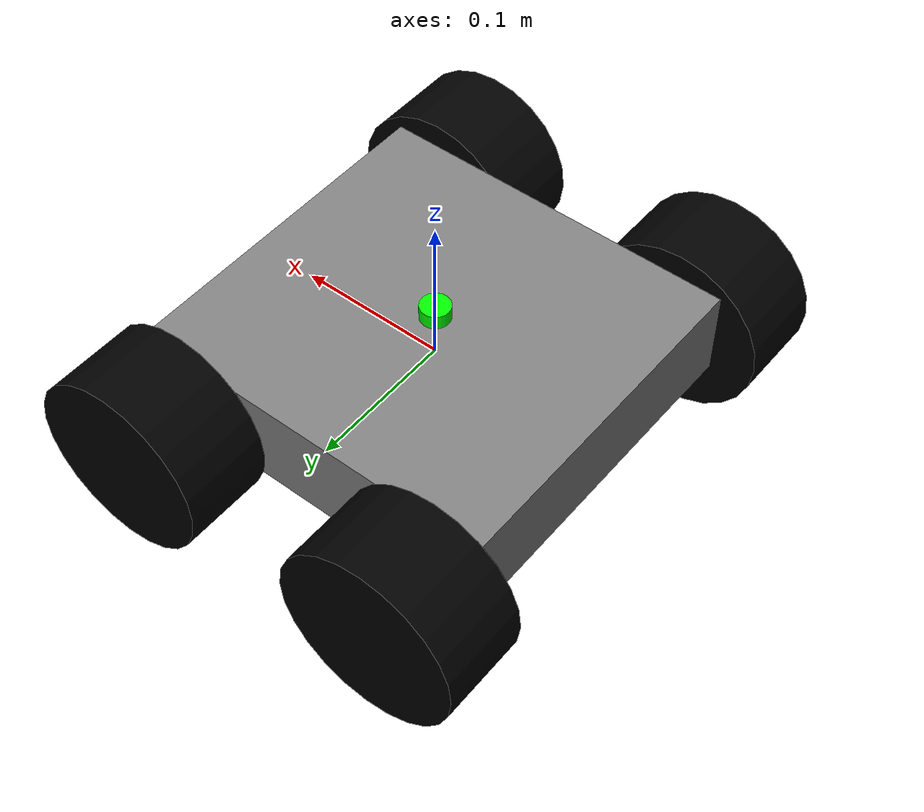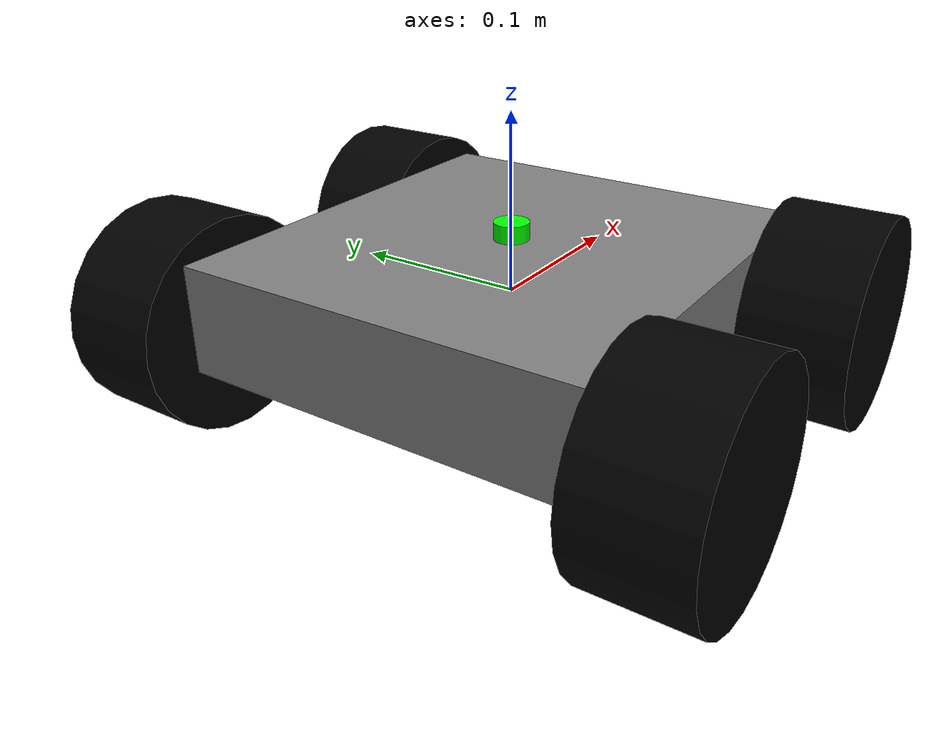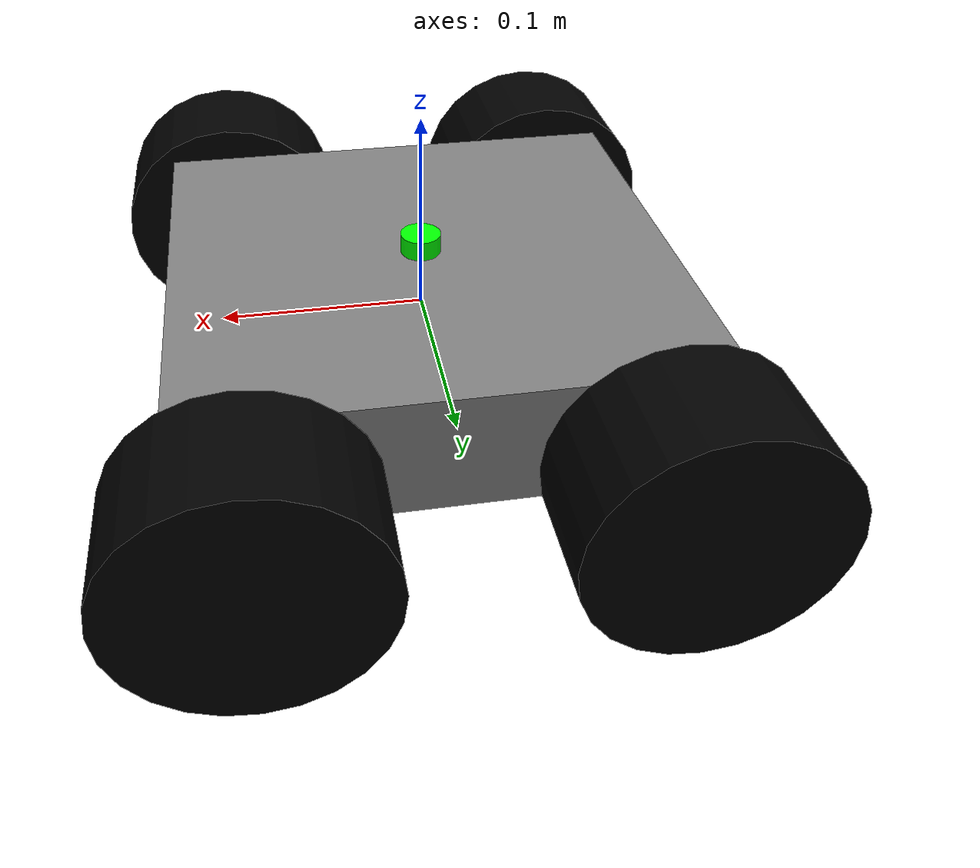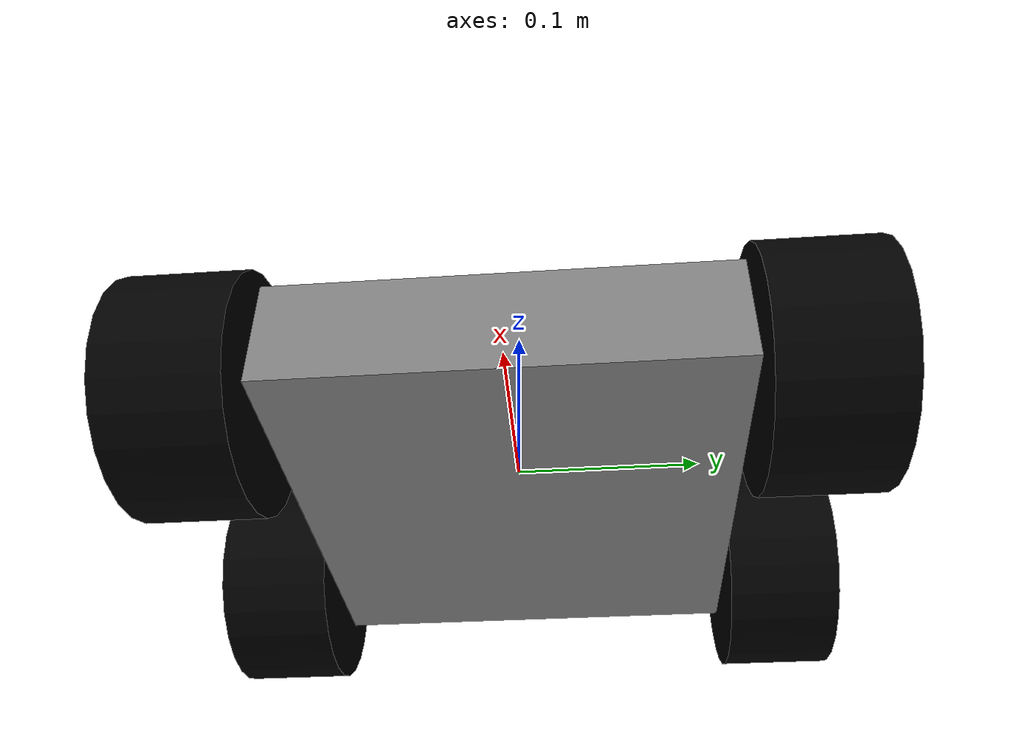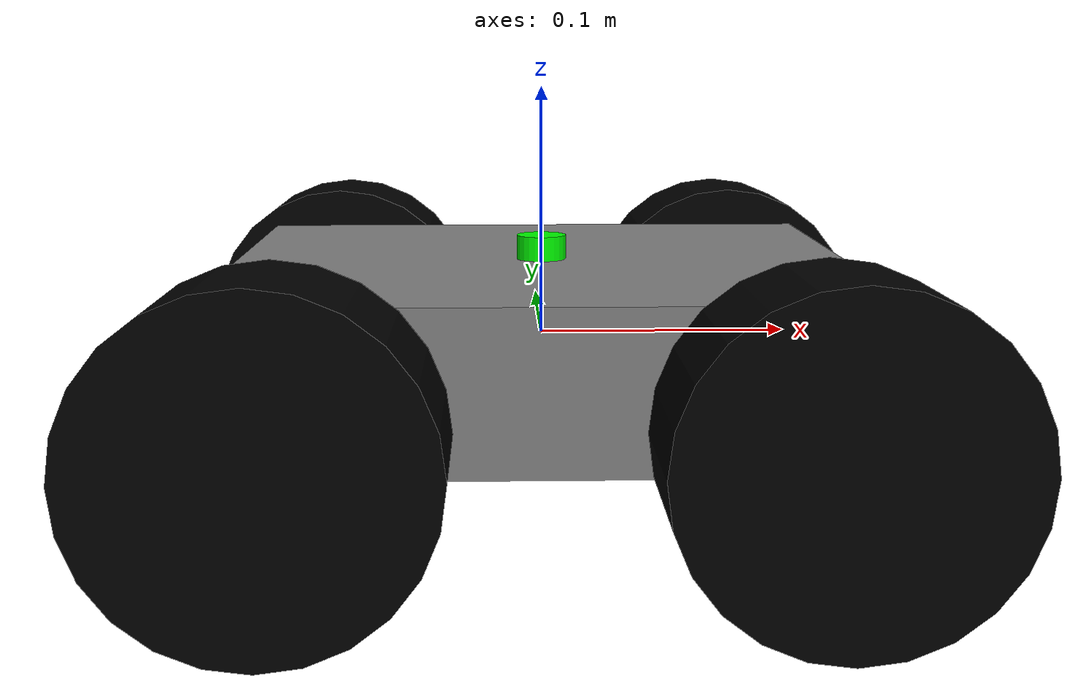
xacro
<?xml version="1.0"?>
<robot xmlns:xacro="http://www.ros.org/wiki/xacro"  name="robot">

    <xacro:arg name="use_ros2_control" default="true"/>

    <xacro:include filename="robot_core.xacro" />

    <xacro:if value="$(arg use_ros2_control)">
        <xacro:include filename="ros2_control.xacro"/>
    </xacro:if>
    <xacro:unless value="$(arg use_ros2_control)">
        <xacro:include filename="gazebo_control.xacro"/>
    </xacro:unless>

    <xacro:include filename="lidar.xacro"/>

</robot>

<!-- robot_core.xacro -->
<robot xmlns:xacro="http://www.ros.org/wiki/xacro">

    <xacro:include filename="inertial_macros.xacro"/>

    <xacro:property name="chassis_length" value="0.24765"/>
    <xacro:property name="chassis_width" value="0.23495"/>
    <xacro:property name="chassis_height" value="0.060325"/>

    <xacro:property name="wheel_radius" value="0.060325"/>
    <xacro:property name="wheel_width" value="0.060325"/>

    <xacro:property name="basis_wheel_x_distance" value="0.0936625"/>
    <xacro:property name="basis_wheel_y_distance" value="${(chassis_width/2)+(wheel_width/2)}"/>
    <xacro:property name="basis_wheel_z_distance" value="-0.01349375"/>

    <material name="gray">
        <color rgba="0.5 0.5 0.5 1"/>
    </material>

    <material name="black">
        <color rgba="0 0 0 1"/>
    </material>

    <material name="green">
        <color rgba="0 1 0 1"/>
    </material>

    <!--base link-->

    <link name="base_link">
    </link>

    <!--chassis-->

    <joint name="chassis_joint" type="fixed">
        <parent link="base_link"/>
        <child link="chassis"/>
        <origin xyz="${-chassis_length/2} 0 ${-chassis_height/2}"/>
    </joint>

    <link name="chassis">
        <visual>
            <origin xyz="${chassis_length/2} 0 ${chassis_height/2}"/>
            <geometry>
                <box size="${chassis_length} ${chassis_width} ${chassis_height}"/>
            </geometry>
            <material name="gray"/>
        </visual>
        <collision>
            <origin xyz="${chassis_length/2} 0 ${chassis_height/2}"/>
            <geometry>
                <box size="${chassis_length} ${chassis_width} ${chassis_height}"/>
            </geometry>
        </collision>
        <xacro:inertial_box mass="0.5" x="${chassis_length}" y="${chassis_width}" z="${chassis_height}">
            <origin xyz="${chassis_length/2} 0 ${chassis_height/2}" rpy="0 0 0"/>
        </xacro:inertial_box>
    </link>

    <gazebo reference="chassis">
        <material>Gazebo/Black</material>
    </gazebo>

    <!--left front wheel-->

    <joint name="left_front_wheel_joint" type="continuous">
        <parent link="base_link"/>
        <child link="left_front_wheel"/>
        <origin xyz="${basis_wheel_x_distance} ${basis_wheel_y_distance} ${basis_wheel_z_distance}" rpy="-${pi/2} 0 0"/>
        <axis xyz="0 0 1"/>
    </joint>

    <link name="left_front_wheel">
        <visual>
            <geometry>
                <cylinder radius="${wheel_radius}" length="${wheel_width}"/>
            </geometry>
            <material name="black"/>
        </visual>
        <collision>
            <geometry>
                <cylinder radius="${wheel_radius}" length="${wheel_width}"/>
            </geometry>
        </collision>
        <xacro:inertial_cylinder mass="0.1" length="${wheel_width}" radius="${wheel_radius}">
            <origin xyz="0 0 0" rpy="0 0 0"/>
        </xacro:inertial_cylinder>
    </link>

    <gazebo reference="left_front_wheel">
        <material>Gazebo/Gray</material>
    </gazebo>

    <!--right front wheel-->

    <joint name="right_front_wheel_joint" type="continuous">
        <parent link="base_link"/>
        <child link="right_front_wheel"/>
        <origin xyz="${basis_wheel_x_distance} -${basis_wheel_y_distance} ${basis_wheel_z_distance}" rpy="${pi/2} 0 0"/>
        <axis xyz="0 0 -1"/>
    </joint>

    <link name="right_front_wheel">
        <visual>
            <geometry>
                <cylinder radius="${wheel_radius}" length="${wheel_width}"/>
            </geometry>
            <material name="black"/>
        </visual>
        <collision>
            <geometry>
                <cylinder radius="${wheel_radius}" length="${wheel_width}"/>
            </geometry>
        </collision>
        <xacro:inertial_cylinder mass="0.1" length="${wheel_width}" radius="${wheel_radius}">
            <origin xyz="0 0 0" rpy="0 0 0"/>
        </xacro:inertial_cylinder>
    </link>

    <gazebo reference="right_front_wheel">
        <material>Gazebo/Gray</material>
    </gazebo>

    <!--left rear wheel-->

    <joint name="left_rear_wheel_joint" type="continuous">
        <parent link="base_link"/>
        <child link="left_rear_wheel"/>
        <origin xyz="-${basis_wheel_x_distance} ${basis_wheel_y_distance} ${basis_wheel_z_distance}" rpy="-${pi/2} 0 0"/>
        <axis xyz="0 0 1"/>
    </joint>

    <link name="left_rear_wheel">
        <visual>
            <geometry>
                <cylinder radius="${wheel_radius}" length="${wheel_width}"/>
            </geometry>
            <material name="black"/>
        </visual>
        <collision>
            <geometry>
                <cylinder radius="${wheel_radius}" length="${wheel_width}"/>
            </geometry>
        </collision>
        <xacro:inertial_cylinder mass="0.1" length="${wheel_width}" radius="${wheel_radius}">
            <origin xyz="0 0 0" rpy="0 0 0"/>
        </xacro:inertial_cylinder>
    </link>

    <gazebo reference="left_rear_wheel">
        <material>Gazebo/Gray</material>
    </gazebo>

    <!--right rear wheel-->

    <joint name="right_rear_wheel_joint" type="continuous">
        <parent link="base_link"/>
        <child link="right_rear_wheel"/>
        <origin xyz="-${basis_wheel_x_distance} -${basis_wheel_y_distance} ${basis_wheel_z_distance}" rpy="${pi/2} 0 0"/>
        <axis xyz="0 0 -1"/>
    </joint>

    <link name="right_rear_wheel">
        <visual>
            <geometry>
                <cylinder radius="${wheel_radius}" length="${wheel_width}"/>
            </geometry>
            <material name="black"/>
        </visual>
        <collision>
            <geometry>
                <cylinder radius="${wheel_radius}" length="${wheel_width}"/>
            </geometry>
        </collision>
        <xacro:inertial_cylinder mass="0.1" length="${wheel_width}" radius="${wheel_radius}">
            <origin xyz="0 0 0" rpy="0 0 0"/>
        </xacro:inertial_cylinder>
    </link>

    <gazebo reference="right_rear_wheel">
        <material>Gazebo/Gray</material>
    </gazebo>

</robot>

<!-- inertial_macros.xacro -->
<robot xmlns:xacro="http://www.ros.org/wiki/xacro" >

    <xacro:macro name="inertial_box" params="mass x y z *origin">
        <inertial>
            <xacro:insert_block name="origin"/>
            <mass value="${mass}" />
            <inertia ixx="${(1/12) * mass * (y*y+z*z)}" ixy="0.0" ixz="0.0"
                    iyy="${(1/12) * mass * (x*x+z*z)}" iyz="0.0"
                    izz="${(1/12) * mass * (x*x+y*y)}" />
        </inertial>
    </xacro:macro>

    <xacro:macro name="inertial_cylinder" params="mass length radius *origin">
        <inertial>
            <xacro:insert_block name="origin"/>
            <mass value="${mass}" />
            <inertia ixx="${(1/12) * mass * (3*radius*radius + length*length)}" ixy="0.0" ixz="0.0"
                    iyy="${(1/12) * mass * (3*radius*radius + length*length)}" iyz="0.0"
                    izz="${(1/2) * mass * (radius*radius)}" />
        </inertial>
    </xacro:macro>

</robot>

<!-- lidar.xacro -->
<robot xmlns:xacro="http://www.ros.org/wiki/xacro">

    <joint name="laser_joint" type="fixed">
        <parent link="base_link"/>
        <child link="laser"/>
        <origin xyz="0 0 0.035" rpy="0 0 0"/>
    </joint>

    <link name="laser">
        <visual>
            <geometry>
                <cylinder radius="0.01" length="0.01"/>
            </geometry>
            <material name="green"/>
        </visual>
        <collision>
            <geometry>
                <cylinder radius="0.01" length="0.01"/>
            </geometry>
        </collision>
        <xacro:inertial_cylinder mass="0.1" length="0.01" radius="0.01">
            <origin xyz="0 0 0" rpy="0 0 0"/>
        </xacro:inertial_cylinder>
    </link>

    <gazebo reference="laser">
        <material>Gazebo/Green</material>
        <sensor name="laser" type="ray">
            <pose> 0 0 0 0 0 0</pose>
            <visualize>true</visualize>
            <update_rate>10</update_rate>
            <ray>
                <scan>
                    <horizontal>
                        <samples>360</samples>
                        <resolution>1</resolution>
                        <min_angle>-3.14</min_angle>
                        <max_angle>3.14</max_angle>
                    </horizontal>
                </scan>
                <range>
                    <min>0.2</min>
                    <max>12</max>
                    <resolution>0.02</resolution>
                </range>
            </ray>
            <plugin name="laser_controller" filename="libgazebo_ros_ray_sensor.so">
                <ros>
                    <argument>~/out:=scan</argument>
                </ros>
                <output_type>sensor_msgs/LaserScan</output_type>
                <frame_name>laser</frame_name>
            </plugin>
        </sensor>
    </gazebo>
</robot>
